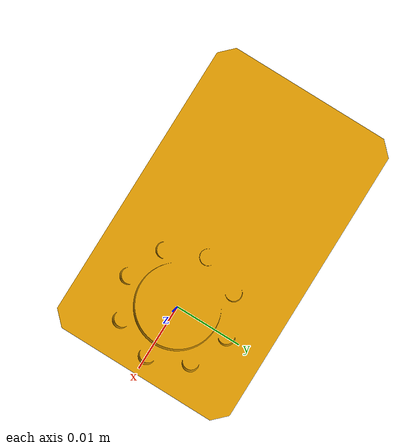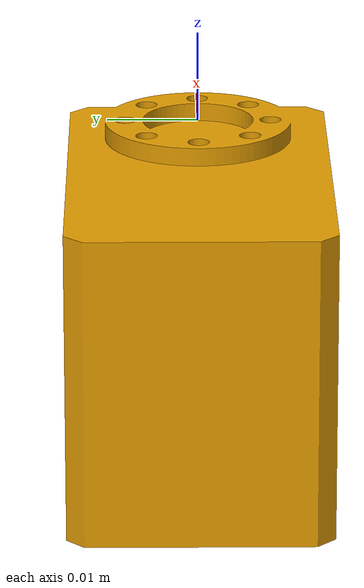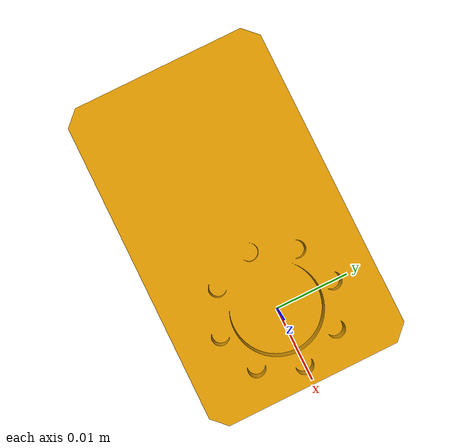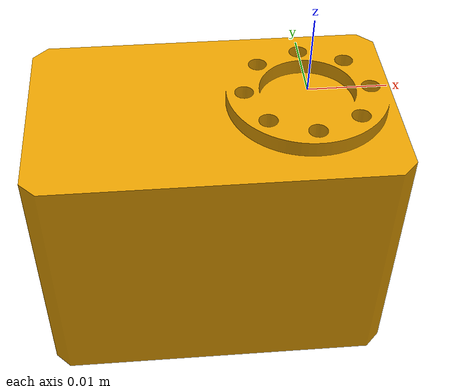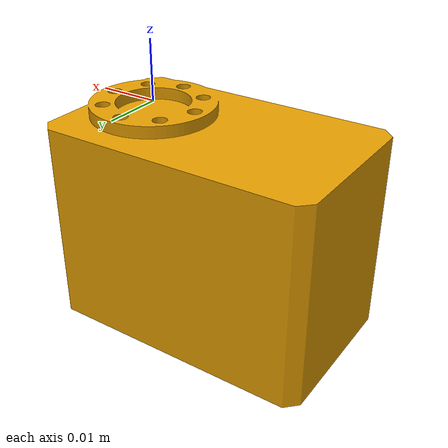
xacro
<robot name="test_robot" xmlns:xacro="http://ros.org/wiki/xacro">
  <xacro:property name="side" value="0.5" />

  <link name="base_link">
    <visual>
      <geometry>
        <mesh filename="package://kyun_description/mesh/servo01.stl" scale="0.001 0.001 0.001"/>
        <origin xyz="0 0 0"/>
      </geometry>
    </visual>
  </link>
</robot>
